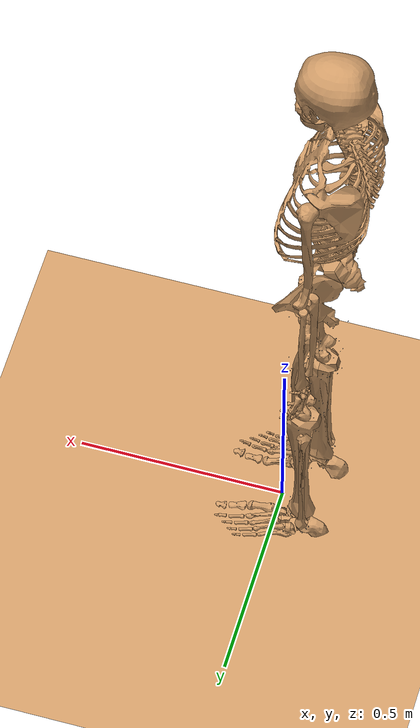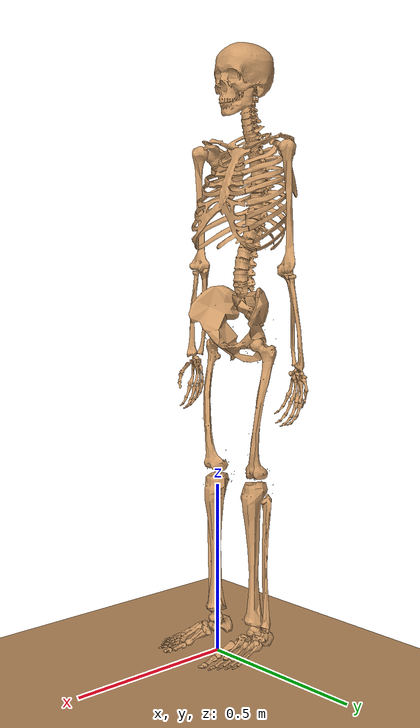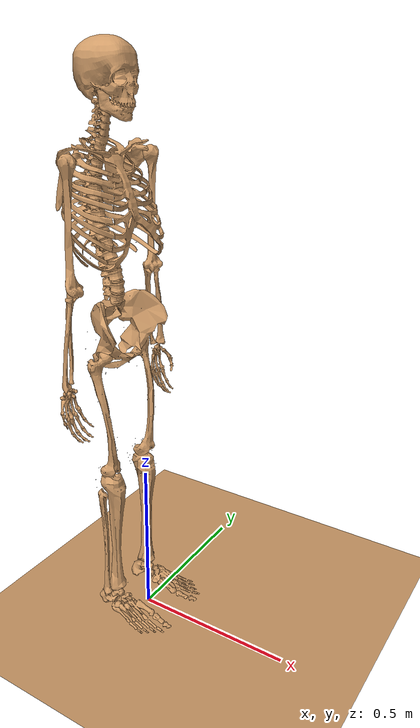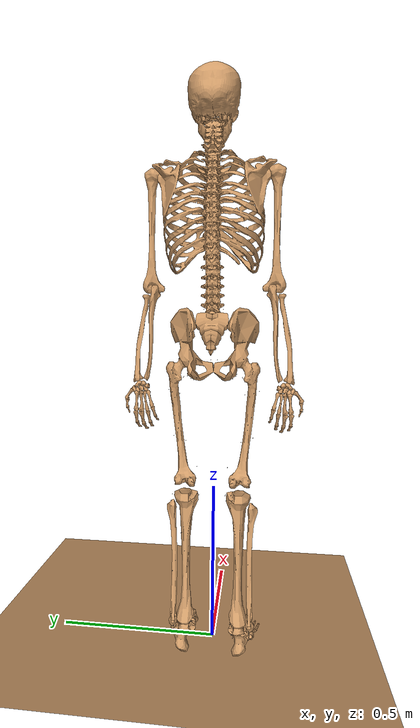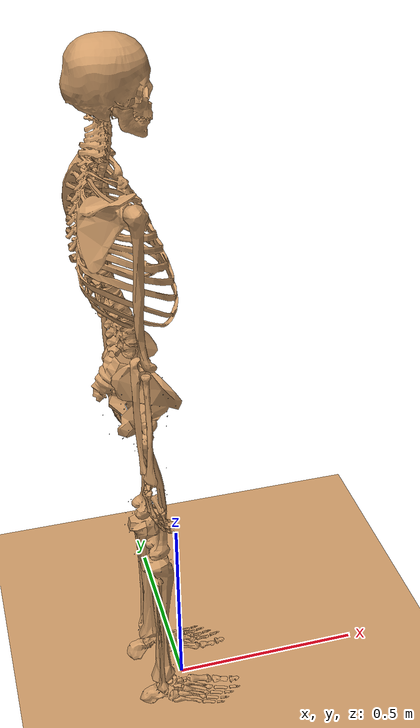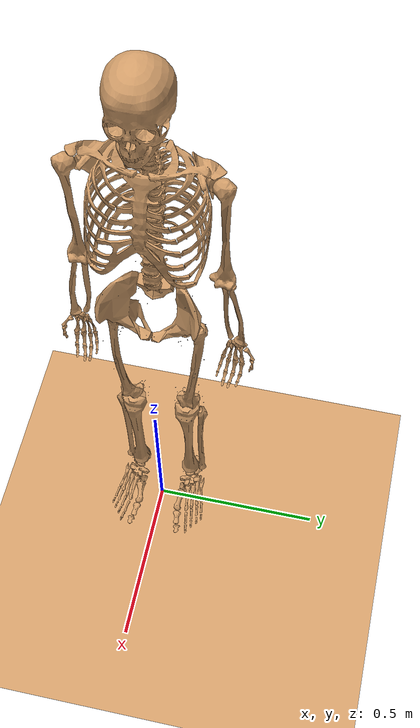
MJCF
<?xml version="1.1" encoding="utf-8"?>
<!--Created by Guoping Zhao, Lauflabor, TU Darmstadt.-->
<!--Based on Hamner2010 OpenSim model.-->
<!--Simplify knee joint to a single DoF revolution joint.-->
<!--v1.1 simplify the path for the knee extensors: rect_fem, vas_med, vas_int, and vas_lat. -->
<!--This model parameters (e.g. contact detection, muscle path, etc.) haven't been optimized.-->
<mujoco model="skeleton">

  <compiler inertiafromgeom="auto" angle="radian" balanceinertia="true" boundmass="0.001" boundinertia="0.001">
    <lengthrange inttotal="50" useexisting="true"></lengthrange>
  </compiler>
  <default>
    <joint limited="true" damping="1.0" armature="0.01" stiffness="1.0"></joint>
    <geom rgba="0.8 0.6 .4 1" margin="0.001" group="0"></geom>
    <site size="0.001"></site>
    <tendon width="0.005" rgba=".95 .3 .3 1" limited="false"></tendon>
    <muscle scale="200" ctrlrange="0 1" ctrllimited="true" range="0.65 1.05"></muscle>
    <motor ctrlrange="-1.0 1.0" ctrllimited="true"></motor>
  </default>
  <size njmax="1000" nconmax="400" nuser_jnt="1"></size>
  <worldbody>
    <body name="pelvis" pos="       0 6.73556e-17      0.975" quat="0.7071067811865475 0.7071067811865475 0.0 0.0">
      <light name="spotlight" mode="trackcom" pos="0 50 2" dir="0 -1 0" />
      <camera name="track" mode="trackcom" pos="0 0 4" xyaxes="1 0 0 0 1 0" />
      <freejoint name="root" />
      <geom name="sacrum" type="mesh" mesh="sacrum"></geom>
      <geom name="pelvis" type="mesh" mesh="pelvis"></geom>
      <geom name="l_pelvis" type="mesh" mesh="l_pelvis"></geom>
      <inertial pos="-0.0721882        0        0" mass="13.5729922649758" fullinertia="0.123517 0.104653 0.0695686        0        0        0"></inertial>
      <site name="glut_med1_r-P1" pos="-0.0416588 0.0310399 0.123445"></site>
      <site name="glut_med2_r-P1" pos="-0.0872997 0.0454367 0.0782124"></site>
      <site name="glut_med3_r-P1" pos="-0.124874 0.010721 0.066164"></site>
      <site name="glut_min1_r-P1" pos="-0.047683 -0.0081684 0.107823"></site>
      <site name="glut_min2_r-P1" pos="-0.0646324 -0.00663682 0.101186"></site>
      <site name="glut_min3_r-P1" pos="-0.0851555 -0.00643261 0.0874018"></site>
      <site name="semimem_r-P1" pos="-0.121709 -0.0995217 0.0730153"></site>
      <site name="semiten_r-P1" pos="-0.12901 -0.112193 0.0616612"></site>
      <site name="bifemlh_r-P1" pos="-0.128611 -0.104729 0.0709017"></site>
      <site name="sar_r-P1" pos="-0.0156221 -0.00132736 0.126814"></site>
      <site name="add_long_r-P1" pos="-0.0322652 -0.0853597 0.0172557"></site>
      <site name="add_brev_r-P1" pos="-0.0599356 -0.093426 0.0167452"></site>
      <site name="add_mag1_r-P1" pos="-0.0747408 -0.119871 0.0260368"></site>
      <site name="add_mag2_r-P1" pos="-0.0848492 -0.121709 0.0314483"></site>
      <site name="add_mag3_r-P1" pos="-0.113418 -0.116532 0.0498476"></site>
      <site name="tfl_r-P1" pos="-0.0317546 0.0218505 0.126712"></site>
      <site name="pect_r-P1" pos="-0.0440072 -0.0784166 0.0460493"></site>
      <site name="grac_r-P1" pos="-0.0755679 -0.121199 0.0285281"></site>
      <site name="glut_max1_r-P1" pos="-0.122015 0.0624882 0.0714735"></site>
      <site name="glut_max1_r-P2" pos="-0.131818 0.00122526 0.090465"></site>
      <site name="glut_max2_r-P1" pos="-0.13774 0.0179705 0.0574851"></site>
      <site name="glut_max2_r-P2" pos="-0.140496 -0.0530946 0.0933239"></site>
      <site name="glut_max3_r-P1" pos="-0.158875 -0.032061 0.00592209"></site>
      <site name="glut_max3_r-P2" pos="-0.156118 -0.107414 0.0411483"></site>
      <site name="iliacus_r-P1" pos="-0.0688187 0.0372683 0.0871976"></site>
      <site name="iliacus_r-P2" pos="-0.0263431 -0.0561577 0.0828071"></site>
      <site name="iliacus_r-P3" pos="-0.0294062 -0.0821945 0.0833176"></site>
      <site name="psoas_r-P1" pos="-0.0660619 0.0905671 0.0295083"></site>
      <site name="psoas_r-P2" pos="-0.024301 -0.0581998 0.0774977"></site>
      <site name="psoas_r-P3" pos="-0.0294062 -0.0821945 0.0833176"></site>
      <site name="quad_fem_r-P1" pos="-0.116706 -0.117523 0.0530946"></site>
      <site name="gem_r-P1" pos="-0.115685 -0.0837261 0.0729029"></site>
      <site name="peri_r-P1" pos="-0.142539 0.000306315 0.0239947"></site>
      <site name="peri_r-P2" pos="-0.121811 -0.028181 0.067083"></site>
      <site name="rect_fem_r-P1" pos="-0.030121 -0.0317546 0.0988376"></site>
      <site name="glut_med1_l-P1" pos="-0.0416588 0.0310399 -0.123445"></site>
      <site name="glut_med2_l-P1" pos="-0.0872997 0.0454367 -0.0782124"></site>
      <site name="glut_med3_l-P1" pos="-0.124874 0.010721 -0.066164"></site>
      <site name="glut_min1_l-P1" pos="-0.047683 -0.0081684 -0.107823"></site>
      <site name="glut_min2_l-P1" pos="-0.0646324 -0.00663682 -0.101186"></site>
      <site name="glut_min3_l-P1" pos="-0.0851555 -0.00643261 -0.0874018"></site>
      <site name="semimem_l-P1" pos="-0.121709 -0.0995217 -0.0730153"></site>
      <site name="semiten_l-P1" pos="-0.12901 -0.112193 -0.0616612"></site>
      <site name="bifemlh_l-P1" pos="-0.128611 -0.104729 -0.0709017"></site>
      <site name="sar_l-P1" pos="-0.0156221 -0.00132736 -0.126814"></site>
      <site name="add_long_l-P1" pos="-0.0322652 -0.0853597 -0.0172557"></site>
      <site name="add_brev_l-P1" pos="-0.0599356 -0.093426 -0.0167452"></site>
      <site name="add_mag1_l-P1" pos="-0.0747408 -0.119871 -0.0260368"></site>
      <site name="add_mag2_l-P1" pos="-0.0848492 -0.121709 -0.0314483"></site>
      <site name="add_mag3_l-P1" pos="-0.113418 -0.116532 -0.0498476"></site>
      <site name="tfl_l-P1" pos="-0.0317546 0.0218505 -0.126712"></site>
      <site name="pect_l-P1" pos="-0.0440072 -0.0784166 -0.0460493"></site>
      <site name="grac_l-P1" pos="-0.0755679 -0.121199 -0.0285281"></site>
      <site name="glut_max1_l-P1" pos="-0.122015 0.0624882 -0.0714735"></site>
      <site name="glut_max1_l-P2" pos="-0.131818 0.00122526 -0.090465"></site>
      <site name="glut_max2_l-P1" pos="-0.13774 0.0179705 -0.0574851"></site>
      <site name="glut_max2_l-P2" pos="-0.140496 -0.0530946 -0.0933239"></site>
      <site name="glut_max3_l-P1" pos="-0.158875 -0.032061 -0.00592209"></site>
      <site name="glut_max3_l-P2" pos="-0.156118 -0.107414 -0.0411483"></site>
      <site name="iliacus_l-P1" pos="-0.0688187 0.0372683 -0.0871976"></site>
      <site name="iliacus_l-P2" pos="-0.0263431 -0.0561577 -0.0828071"></site>
      <site name="iliacus_l-P3" pos="-0.0294062 -0.0821945 -0.0833176"></site>
      <site name="psoas_l-P1" pos="-0.0660619 0.0905671 -0.0295083"></site>
      <site name="psoas_l-P2" pos="-0.024301 -0.0581998 -0.0774977"></site>
      <site name="psoas_l-P3" pos="-0.0294062 -0.0821945 -0.0833176"></site>
      <site name="quad_fem_l-P1" pos="-0.116706 -0.117523 -0.0530946"></site>
      <site name="gem_l-P1" pos="-0.115685 -0.0837261 -0.0729029"></site>
      <site name="peri_l-P1" pos="-0.142539 0.000306315 -0.0239947"></site>
      <site name="peri_l-P2" pos="-0.121811 -0.028181 -0.067083"></site>
      <site name="rect_fem_l-P1" pos="-0.030121 -0.0317546 -0.0988376"></site>
      <site name="ercspn_r-P1" pos="-0.142947 0.0448241 0.0445178"></site>
      <site name="ercspn_l-P1" pos="-0.142947 0.0448241 -0.0445178"></site>
      <site name="intobl_r-P1" pos="-0.040842 0.0714735 0.118135"></site>
      <site name="intobl_l-P1" pos="-0.040842 0.0714735 -0.118135"></site>
      <site name="extobl_r-P1" pos="-0.0306315 -0.0649388 0.0102105"></site>
      <site name="extobl_l-P1" pos="-0.0306315 -0.0649388 -0.0102105"></site>
      <body name="femur_r" pos="-0.0721882 -0.0674914 0.0852576" quat="1.0 0.0 0.0 0.0">
        <geom name="femur_r" type="mesh" mesh="femur_r"></geom>
        <inertial pos="       0 -0.154514        0" mass="10.7198633143794" fullinertia="0.127486 0.0334185 0.134436        0        0        0"></inertial>
        <site name="glut_med1_r-P2" pos="-0.0198142 -0.0106342 0.0504444"></site>
        <site name="glut_med2_r-P2" pos="-0.0234498 -0.00527166 0.0478994"></site>
        <site name="glut_med3_r-P2" pos="-0.0280852 -0.00427187 0.0470814"></site>
        <site name="glut_min1_r-P2" pos="-0.00654413 -0.00945264 0.0508988"></site>
        <site name="glut_min2_r-P2" pos="-0.00872551 -0.00945264 0.0508988"></site>
        <site name="glut_min3_r-P2" pos="-0.0122703 -0.00754393 0.0499899"></site>
        <site name="bifemsh_r-P1" pos="0.00454454 -0.19187 0.0212684"></site>
        <site name="sar_r-P2" pos="-0.00272672 -0.324298 -0.038265"></site>
        <site name="add_long_r-P2" pos="0.00454454 -0.19187 0.0212684"></site>
        <site name="add_brev_r-P2" pos="0.000818017 -0.108705 0.0267219"></site>
        <site name="add_mag1_r-P2" pos="-0.00409008 -0.110069 0.030812"></site>
        <site name="add_mag2_r-P2" pos="0.0049081 -0.207685 0.0206322"></site>
        <site name="add_mag3_r-P2" pos="0.00636235 -0.348748 -0.0241769"></site>
        <site name="tfl_r-P2" pos="0.0267219 -0.0904363 0.0542618"></site>
        <site name="tfl_r-P3" pos="0.0049081 -0.368017 0.032448"></site>
        <site name="pect_r-P2" pos="-0.0110887 -0.0747122 0.0229954"></site>
        <site name="glut_max1_r-P3" pos="-0.0415371 -0.0225409 0.0356292"></site>
        <site name="glut_max1_r-P4" pos="-0.0251767 -0.0514442 0.0427187"></site>
        <site name="glut_max2_r-P3" pos="-0.0387195 -0.0481721 0.026631"></site>
        <site name="glut_max2_r-P4" pos="-0.014179 -0.092345 0.0380832"></site>
        <site name="glut_max3_r-P3" pos="-0.0271763 -0.0946173 0.0122703"></site>
        <site name="glut_max3_r-P4" pos="-0.00545344 -0.128974 0.0373561"></site>
        <site name="iliacus_r-P4" pos="0.00154514 -0.0493537 0.00518077"></site>
        <site name="iliacus_r-P5" pos="-0.0175419 -0.0564432 0.0117249"></site>
        <site name="psoas_r-P4" pos="0.00145425 -0.0460816 0.00345385"></site>
        <site name="psoas_r-P5" pos="-0.0170875 -0.0542618 0.00945264"></site>
        <site name="quad_fem_r-P2" pos="-0.0346294 -0.0326298 0.033266"></site>
        <site name="gem_r-P2" pos="-0.0129065 -0.00299939 0.0402646"></site>
        <site name="peri_r-P3" pos="-0.0134518 -0.00327207 0.0397193"></site>
        <site name="rect_fem_r-P2" pos="0.0303575 -0.36629 0.00172692"></site>
        <site name="vas_med_r-P1" pos="0.0127247 -0.19078 0.0170875"></site>
        <site name="vas_med_r-P2" pos="0.0323571 -0.251676 0.000818017"></site>
        <site name="vas_med_r-P3" pos="0.0336296 -0.367926 -0.0113613"></site>
        <site name="vas_med_r-P4" pos="0.0249041 -0.38674 -0.0119067"></site>
        <site name="vas_int_r-P1" pos="0.0263583 -0.174874 0.0281761"></site>
        <site name="vas_int_r-P2" pos="0.0304484 -0.189416 0.0259039"></site>
        <site name="vas_int_r-P3" pos="0.0311755 -0.36629 0.00499899"></site>
        <site name="vas_lat_r-P1" pos="0.00436276 -0.168511 0.0317209"></site>
        <site name="vas_lat_r-P2" pos="0.0244496 -0.235498 0.0371743"></site>
        <site name="vas_lat_r-P3" pos="0.0328116 -0.36629 0.0186326"></site>
        <site name="vas_lat_r-P4" pos="0.0229954 -0.385649 0.0167239"></site>
        <site name="med_gas_r-P1" pos="-0.0172692 -0.35711 -0.0213593"></site>
        <site name="med_gas_r-P2" pos="-0.0272672 -0.365563 -0.0234498"></site>
        <site name="lat_gas_r-P1" pos="-0.019996 -0.358655 0.0247223"></site>
        <site name="lat_gas_r-P2" pos="-0.0272672 -0.365199 0.0249041"></site>
        <joint name="hip_flexion_r" damping="5" stiffness="10" type="hinge" pos="0 0 0" axis="       0        0        1" limited="true" range=" -0.787   0.787" ref="0"></joint>
        <joint name="hip_adduction_r" damping="5" stiffness="10" type="hinge" pos="0 0 0" axis="       1        0        0" limited="true" range=" -0.524   0.524" ref="0"></joint>
        <joint name="hip_rotation_r" damping="5" stiffness="20" type="hinge" pos="0 0 0" axis="       0        1        0" limited="true" range=" -2.0944   2.0944" ref="0"></joint>
        <body name="tibia_r" pos="-0.00167398 -0.365545        0" quat="1.0 0.0 0.0 0.0">
          <geom name="tibia_r" type="mesh" mesh="tibia_r"></geom>
          <geom name="fibula_r" type="mesh" mesh="fibula_r"></geom>
          <inertial pos="       0 -0.208485        0" mass="4.27289367601238" fullinertia="0.072432 0.00732943 0.073438        0        0        0"></inertial>
          <site name="semimem_r-P3" pos="-0.0301504 -0.0532769 -0.0218535"></site>
          <site name="semimem_r-P2" pos="-0.0388605 -0.039296 -0.0211165"></site>
          <site name="semiten_r-P3" pos="-0.0370962 -0.0589832 -0.0255497"></site>
          <site name="semiten_r-P4" pos="-0.0126185 -0.0833045 -0.0273587"></site>
          <site name="semiten_r-P5" pos="0.00301504 -0.106755 -0.021552"></site>
          <site name="semiten_r-P2" pos="-0.0469342 -0.0319259 -0.0254269"></site>
          <site name="bifemlh_r-P2" pos="-0.0336121 -0.0402006 0.032864"></site>
          <site name="bifemlh_r-P3" pos="-0.0261304 -0.0628692 0.0383022"></site>
          <site name="bifemsh_r-P2" pos="-0.0336121 -0.0402006 0.032864"></site>
          <site name="bifemsh_r-P3" pos="-0.0261304 -0.0628692 0.0383022"></site>
          <site name="sar_r-P3" pos="-0.00625342 -0.046789 -0.0445556"></site>
          <site name="sar_r-P4" pos="0.00670009 -0.0657726 -0.0427689"></site>
          <site name="sar_r-P5" pos="0.0271354 -0.0938013 -0.0281404"></site>
          <site name="tfl_r-P4" pos="0.00670009 -0.0543824 0.0331655"></site>
          <site name="grac_r-P3" pos="-0.0216971 -0.0575426 -0.0399772"></site>
          <site name="grac_r-P4" pos="0.00670009 -0.0933546 -0.0254604"></site>
          <site name="grac_r-P2" pos="-0.0296702 -0.0356222 -0.0421436"></site>
          <site name="rect_fem_r-P3" pos="0.04071991 -0.06776167  0.0014"></site>
          <site name="vas_med_r-P5" pos="0.04286936 -0.06354775 -0.0146"></site>
          <site name="vas_int_r-P4" pos="0.04100479 -0.06810118  0.0014"></site>
          <site name="vas_lat_r-P5" pos="0.04001863 -0.06593119  0.0165"></site>
          <site name="soleus_r-P1" pos="-0.00268004 -0.171187 0.00792844"></site>
          <site name="tib_post_r-P1" pos="-0.0104968 -0.150529 0.0021217"></site>
          <site name="tib_post_r-P2" pos="-0.0160802 -0.452368 -0.025572"></site>
          <site name="flex_dig_r-P1" pos="-0.00926846 -0.228473 -0.00201003"></site>
          <site name="flex_dig_r-P2" pos="-0.0171969 -0.452368 -0.021887"></site>
          <site name="flex_hal_r-P1" pos="-0.00882179 -0.260634 0.027247"></site>
          <site name="flex_hal_r-P2" pos="-0.0207703 -0.455495 -0.0194303"></site>
          <site name="tib_ant_r-P1" pos="0.0199886 -0.181349 0.0128418"></site>
          <site name="tib_ant_r-P2" pos="0.0367388 -0.441201 -0.0197653"></site>
          <site name="per_brev_r-P1" pos="-0.00781678 -0.295474 0.0362922"></site>
          <site name="per_brev_r-P2" pos="-0.0221103 -0.46722 0.0316021"></site>
          <site name="per_brev_r-P3" pos="-0.0160802 -0.479615 0.0322721"></site>
          <site name="per_long_r-P1" pos="0.000558341 -0.175096 0.0404239"></site>
          <site name="per_long_r-P2" pos="-0.0231153 -0.469565 0.0319371"></site>
          <site name="per_long_r-P3" pos="-0.0180903 -0.482295 0.0322721"></site>
          <site name="per_tert_r-P1" pos="0.00111668 -0.313118 0.0257954"></site>
          <site name="per_tert_r-P2" pos="0.025572 -0.454378 0.0177552"></site>
          <site name="ext_dig_r-P1" pos="0.00357338 -0.154214 0.0308204"></site>
          <site name="ext_dig_r-P2" pos="0.0322721 -0.447455 0.00804011"></site>
          <site name="ext_hal_r-P1" pos="0.00134002 -0.197318 0.0254604"></site>
          <site name="ext_hal_r-P2" pos="0.0364038 -0.444998 -0.0094918"></site>
          <joint name="knee_angle_r" type="hinge" pos="0 0 0" axis="       0        0        1" limited="true" range=" -2.0944 0.174533" ref="0"></joint>
          <body name="talus_r" pos="       0 -0.480173        0" quat="1.0 0.0 0.0 0.0">
            <geom name="talus_rv" type="mesh" mesh="talus_rv"></geom>
            <inertial pos="       0        0        0" mass="0.11524999800438" fullinertia="0.00143714 0.00143714 0.00143714        0        0        0"></inertial>
            <joint name="ankle_angle_r" stiffness="10" damping="1" type="hinge" pos="0 0 0" axis="-0.105014 -0.174022 0.979126" limited="true" range=" -1.5708   1.5708" ref="0"></joint>
            <body name="calcn_r" pos="-0.0544606 -0.0468448 0.00884412" quat="1.0 0.0 0.0 0.0">
              <geom name="r_foot" type="mesh" mesh="foot" condim="3"></geom>
              <inertial pos="0.106552 0.0319656        0" mass="1.44062497505475" fullinertia="0.00183186 0.00510303 0.00536472        0        0        0"></inertial>
              <site name="med_gas_r-P3" pos="0 0.0330311 -0.00564725"></site>
              <site name="lat_gas_r-P3" pos="0 0.0330311 -0.00564725"></site>
              <site name="soleus_r-P2" pos="0 0.0330311 -0.00564725"></site>
              <site name="tib_post_r-P3" pos="0.0444321 0.0355883 -0.0304738"></site>
              <site name="tib_post_r-P4" pos="0.0822581 0.0169418 -0.0299411"></site>
              <site name="flex_dig_r-P3" pos="0.0464566 0.0335638 -0.0298345"></site>
              <site name="flex_dig_r-P4" pos="0.0754387 0.0187531 -0.0280231"></site>
              <site name="flex_dig_r-P5" pos="0.176663 -0.0086307 0.01236"></site>
              <site name="flex_hal_r-P3" pos="0.0398504 0.0294083 -0.025679"></site>
              <site name="flex_hal_r-P4" pos="0.110601 0.00724553 -0.0272773"></site>
              <site name="flex_hal_r-P5" pos="0.183909 -0.00564725 -0.0286625"></site>
              <site name="tib_ant_r-P3" pos="0.12424 0.0189662 -0.0324983"></site>
              <site name="per_brev_r-P4" pos="0.0501859 0.028769 0.0248266"></site>
              <site name="per_brev_r-P5" pos="0.0721356 0.0233349 0.0365473"></site>
              <site name="per_long_r-P4" pos="0.0466697 0.0245069 0.023548"></site>
              <site name="per_long_r-P5" pos="0.0725618 0.0112945 0.0302607"></site>
              <site name="per_long_r-P6" pos="0.0907822 0.00735208 0.0125731"></site>
              <site name="per_long_r-P7" pos="0.128182 0.00905691 -0.0196055"></site>
              <site name="per_tert_r-P3" pos="0.091315 0.0242938 0.031859"></site>
              <site name="ext_dig_r-P3" pos="0.0982408 0.0413421 -0.000106552"></site>
              <site name="ext_dig_r-P4" pos="0.172188 0.00586035 0.0138517"></site>
              <site name="ext_hal_r-P3" pos="0.103355 0.0414487 -0.0224824"></site>
              <site name="ext_hal_r-P4" pos="0.137772 0.0329245 -0.0273838"></site>
              <site name="ext_hal_r-P5" pos="0.184761 0.0148107 -0.0298345"></site>
              <joint name="subtalar_angle_r" type="hinge" pos="0 0 0" axis=" 0.78718 0.604747 -0.120949" limited="true" range=" -1.5708   1.5708" ref="0"></joint>
              <body name="toes_r" pos="0.190515 -0.00213104 0.00115076" quat="1.0 0.0 0.0 0.0">
                <geom name="r_bofoot" type="mesh" mesh="bofoot"></geom>
                <inertial pos="0.036867 0.00639311 -0.0186466" mass="0.249631495677486" fullinertia="0.000130847 0.000261694 0.00130847        0        0        0"></inertial>
                <site name="flex_dig_r-P6" pos="-0.00202449 -0.00831105 0.0156631"></site>
                <site name="flex_dig_r-P7" pos="0.0303673 -0.00756518 0.0229087"></site>
                <site name="flex_dig_r-P8" pos="0.0469894 -0.00639311 0.0257856"></site>
                <site name="flex_hal_r-P6" pos="0.0165155 -0.00681932 -0.0282363"></site>
                <site name="flex_hal_r-P7" pos="0.0598822 -0.0108683 -0.0192859"></site>
                <site name="ext_dig_r-P5" pos="0.000319656 0.00500794 0.0163024"></site>
                <site name="ext_dig_r-P6" pos="0.0472025 -0.000426208 0.026638"></site>
                <site name="ext_hal_r-P6" pos="0.0317525 0.00436863 -0.0261052"></site>
                <site name="ext_hal_r-P7" pos="0.0599887 0.00362276 -0.0198187"></site>
                <joint name="mtp_angle_r" type="hinge" pos="0 0 0" axis="-0.580954        0 0.813936" limited="true" range=" -1.5708   1.5708" ref="0"></joint>
              </body>
            </body>
          </body>
        </body>
      </body>
      <body name="femur_l" pos="-0.0721882 -0.0674914 -0.0852576" quat="1.0 0.0 0.0 0.0">
        <geom name="femur_l" type="mesh" mesh="femur_l"></geom>
        <inertial pos="       0 -0.154514        0" mass="10.7198633143794" fullinertia="0.127486 0.0334185 0.134436        0        0        0"></inertial>
        <site name="glut_med1_l-P2" pos="-0.0198142 -0.0106342 -0.0504444"></site>
        <site name="glut_med2_l-P2" pos="-0.0234498 -0.00527166 -0.0478994"></site>
        <site name="glut_med3_l-P2" pos="-0.0280852 -0.00427187 -0.0470814"></site>
        <site name="glut_min1_l-P2" pos="-0.00654413 -0.00945264 -0.0508988"></site>
        <site name="glut_min2_l-P2" pos="-0.00872551 -0.00945264 -0.0508988"></site>
        <site name="glut_min3_l-P2" pos="-0.0122703 -0.00754393 -0.0499899"></site>
        <site name="bifemsh_l-P1" pos="0.00454454 -0.19187 -0.0212684"></site>
        <site name="sar_l-P2" pos="-0.00272672 -0.324298 0.038265"></site>
        <site name="add_long_l-P2" pos="0.00454454 -0.19187 -0.0212684"></site>
        <site name="add_brev_l-P2" pos="0.000818017 -0.108705 -0.0267219"></site>
        <site name="add_mag1_l-P2" pos="-0.00409008 -0.110069 -0.030812"></site>
        <site name="add_mag2_l-P2" pos="0.0049081 -0.207685 -0.0206322"></site>
        <site name="add_mag3_l-P2" pos="0.00636235 -0.348748 0.0241769"></site>
        <site name="tfl_l-P2" pos="0.0267219 -0.0904363 -0.0542618"></site>
        <site name="tfl_l-P3" pos="0.0049081 -0.368017 -0.032448"></site>
        <site name="pect_l-P2" pos="-0.0110887 -0.0747122 -0.0229954"></site>
        <site name="glut_max1_l-P3" pos="-0.0415371 -0.0225409 -0.0356292"></site>
        <site name="glut_max1_l-P4" pos="-0.0251767 -0.0514442 -0.0427187"></site>
        <site name="glut_max2_l-P3" pos="-0.0387195 -0.0481721 -0.026631"></site>
        <site name="glut_max2_l-P4" pos="-0.014179 -0.092345 -0.0380832"></site>
        <site name="glut_max3_l-P3" pos="-0.0271763 -0.0946173 -0.0122703"></site>
        <site name="glut_max3_l-P4" pos="-0.00545344 -0.128974 -0.0373561"></site>
        <site name="iliacus_l-P4" pos="0.00154514 -0.0493537 -0.00518077"></site>
        <site name="iliacus_l-P5" pos="-0.0175419 -0.0564432 -0.0117249"></site>
        <site name="psoas_l-P4" pos="0.00145425 -0.0460816 -0.00345385"></site>
        <site name="psoas_l-P5" pos="-0.0170875 -0.0542618 -0.00945264"></site>
        <site name="quad_fem_l-P2" pos="-0.0346294 -0.0326298 -0.033266"></site>
        <site name="gem_l-P2" pos="-0.0129065 -0.00299939 -0.0402646"></site>
        <site name="peri_l-P3" pos="-0.0134518 -0.00327207 -0.0397193"></site>
        <site name="rect_fem_l-P2" pos="0.0303575 -0.36629 -0.00172692"></site>
        <site name="vas_med_l-P1" pos="0.0127247 -0.19078 -0.0170875"></site>
        <site name="vas_med_l-P2" pos="0.0323571 -0.251676 -0.000818017"></site>
        <site name="vas_med_l-P3" pos="0.0336296 -0.367926 0.0113613"></site>
        <site name="vas_med_l-P4" pos="0.0249041 -0.38674 0.0119067"></site>
        <site name="vas_int_l-P1" pos="0.0263583 -0.174874 -0.0281761"></site>
        <site name="vas_int_l-P2" pos="0.0304484 -0.189416 -0.0259039"></site>
        <site name="vas_int_l-P3" pos="0.0311755 -0.36629 -0.00499899"></site>
        <site name="vas_lat_l-P1" pos="0.00436276 -0.168511 -0.0317209"></site>
        <site name="vas_lat_l-P2" pos="0.0244496 -0.235498 -0.0371743"></site>
        <site name="vas_lat_l-P3" pos="0.0328116 -0.36629 -0.0186326"></site>
        <site name="vas_lat_l-P4" pos="0.0229954 -0.385649 -0.0167239"></site>

        <site name="med_gas_l-P1" pos="-0.0172692 -0.35711 0.0213593"></site>
        <site name="med_gas_l-P2" pos="-0.0272672 -0.365563 0.0234498"></site>
        <site name="lat_gas_l-P1" pos="-0.019996 -0.358655 -0.0247223"></site>
        <site name="lat_gas_l-P2" pos="-0.0272672 -0.365199 -0.0249041"></site>
        <joint name="hip_flexion_l" damping="5" stiffness="10" type="hinge" pos="0 0 0" axis="       0        0        1" limited="true" range=" -0.787   0.787" ref="0"></joint>
        <joint name="hip_adduction_l" damping="5" stiffness="10" type="hinge" pos="0 0 0" axis="      -1        0        0" limited="true" range=" -0.524   0.524" ref="0"></joint>
        <joint name="hip_rotation_l" damping="5" stiffness="20" type="hinge" pos="0 0 0" axis="       0       -1        0" limited="true" range=" -2.0944   2.0944" ref="0"></joint>
        <body name="tibia_l" pos="-0.00167398 -0.365545        0" quat="1.0 0.0 0.0 0.0">
          <geom name="tibia_l" type="mesh" mesh="tibia_l"></geom>
          <geom name="fibula_l" type="mesh" mesh="fibula_l"></geom>
          <inertial pos="       0 -0.208485        0" mass="4.27289367601238" fullinertia="0.072432 0.00732943 0.073438        0        0        0"></inertial>
          <site name="semimem_l-P3" pos="-0.0301504 -0.0532769 0.0218535"></site>
          <site name="semimem_l-P2" pos="-0.0388605 -0.039296 0.0211165"></site>
          <site name="semiten_l-P3" pos="-0.0370962 -0.0589832 0.0255497"></site>
          <site name="semiten_l-P4" pos="-0.0126185 -0.0833045 0.0273587"></site>
          <site name="semiten_l-P5" pos="0.00301504 -0.106755 0.021552"></site>
          <site name="semiten_l-P2" pos="-0.0469342 -0.0319259 0.0254269"></site>
          <site name="bifemlh_l-P2" pos="-0.0336121 -0.0402006 -0.032864"></site>
          <site name="bifemlh_l-P3" pos="-0.0261304 -0.0628692 -0.0383022"></site>
          <site name="bifemsh_l-P2" pos="-0.0336121 -0.0402006 -0.032864"></site>
          <site name="bifemsh_l-P3" pos="-0.0261304 -0.0628692 -0.0383022"></site>
          <site name="sar_l-P3" pos="-0.00625342 -0.046789 0.0445556"></site>
          <site name="sar_l-P4" pos="0.00670009 -0.0657726 0.0427689"></site>
          <site name="sar_l-P5" pos="0.0271354 -0.0938013 0.0281404"></site>
          <site name="tfl_l-P4" pos="0.00670009 -0.0543824 -0.0331655"></site>
          <site name="grac_l-P3" pos="-0.0216971 -0.0575426 0.0399772"></site>
          <site name="grac_l-P4" pos="0.00670009 -0.0933546 0.0254604"></site>
          <site name="grac_l-P2" pos="-0.0296702 -0.0356222 0.0421436"></site>
          <site name="rect_fem_l-P3" pos="0.04071991 -0.06776167 -0.0014"></site>
          <site name="vas_med_l-P5" pos="0.04286936 -0.06354775  0.0146"></site>
          <site name="vas_int_l-P4" pos="0.04071991 -0.06776167 -0.0014"></site>
          <site name="vas_lat_l-P5" pos="0.04001863 -0.06593119 -0.0165"></site>
          <site name="soleus_l-P1" pos="-0.00268004 -0.171187 -0.00792844"></site>
          <site name="tib_post_l-P1" pos="-0.0104968 -0.150529 -0.0021217"></site>
          <site name="tib_post_l-P2" pos="-0.0160802 -0.452368 0.025572"></site>
          <site name="flex_dig_l-P1" pos="-0.00926846 -0.228473 0.00201003"></site>
          <site name="flex_dig_l-P2" pos="-0.0171969 -0.452368 0.021887"></site>
          <site name="flex_hal_l-P1" pos="-0.00882179 -0.260634 -0.027247"></site>
          <site name="flex_hal_l-P2" pos="-0.0207703 -0.455495 0.0194303"></site>
          <site name="tib_ant_l-P1" pos="0.0199886 -0.181349 -0.0128418"></site>
          <site name="tib_ant_l-P2" pos="0.0367388 -0.441201 0.0197653"></site>
          <site name="per_brev_l-P1" pos="-0.00781678 -0.295474 -0.0362922"></site>
          <site name="per_brev_l-P2" pos="-0.0221103 -0.46722 -0.0316021"></site>
          <site name="per_brev_l-P3" pos="-0.0160802 -0.479615 -0.0322721"></site>
          <site name="per_long_l-P1" pos="0.000558341 -0.175096 -0.0404239"></site>
          <site name="per_long_l-P2" pos="-0.0231153 -0.469565 -0.0319371"></site>
          <site name="per_long_l-P3" pos="-0.0180903 -0.482295 -0.0322721"></site>
          <site name="per_tert_l-P1" pos="0.00111668 -0.313118 -0.0257954"></site>
          <site name="per_tert_l-P2" pos="0.025572 -0.454378 -0.0177552"></site>
          <site name="ext_dig_l-P1" pos="0.00357338 -0.154214 -0.0308204"></site>
          <site name="ext_dig_l-P2" pos="0.0322721 -0.447455 -0.00804011"></site>
          <site name="ext_hal_l-P1" pos="0.00134002 -0.197318 -0.0254604"></site>
          <site name="ext_hal_l-P2" pos="0.0364038 -0.444998 0.0094918"></site>
          <joint name="knee_angle_l" type="hinge" pos="0 0 0" axis="       0        0        1" limited="true" range=" -2.0944 0.174533" ref="0"></joint>
          <body name="talus_l" pos="       0 -0.480173        0" quat="1.0 0.0 0.0 0.0">
            <geom name="talus_lv" type="mesh" mesh="talus_lv"></geom>
            <inertial pos="       0        0        0" mass="0.11524999800438" fullinertia="0.00143714 0.00143714 0.00143714        0        0        0"></inertial>
            <joint name="ankle_angle_l" stiffness="10" damping="1" type="hinge" pos="0 0 0" axis="0.105014 0.174022 0.979126" limited="true" range=" -1.0472   1.0472" ref="0"></joint>
            <body name="calcn_l" pos="-0.0544606 -0.0468448 -0.00884412" quat="1.0 0.0 0.0 0.0">
              <geom name="l_foot" type="mesh" mesh="l_foot" condim="3"></geom>
              <inertial pos="0.106552 0.0319656        0" mass="1.44062497505475" fullinertia="0.00183186 0.00510303 0.00536472        0        0        0"></inertial>
              <site name="med_gas_l-P3" pos="0 0.0330311 0.00564725"></site>
              <site name="lat_gas_l-P3" pos="0 0.0330311 0.00564725"></site>
              <site name="soleus_l-P2" pos="0 0.0330311 0.00564725"></site>
              <site name="tib_post_l-P3" pos="0.0444321 0.0355883 0.0304738"></site>
              <site name="tib_post_l-P4" pos="0.0822581 0.0169418 0.0299411"></site>
              <site name="flex_dig_l-P3" pos="0.0464566 0.0335638 0.0298345"></site>
              <site name="flex_dig_l-P4" pos="0.0754387 0.0187531 0.0280231"></site>
              <site name="flex_dig_l-P5" pos="0.176663 -0.0086307 -0.01236"></site>
              <site name="flex_hal_l-P3" pos="0.0398504 0.0294083 0.025679"></site>
              <site name="flex_hal_l-P4" pos="0.110601 0.00724553 0.0272773"></site>
              <site name="flex_hal_l-P5" pos="0.183909 -0.00564725 0.0286625"></site>
              <site name="tib_ant_l-P3" pos="0.12424 0.0189662 0.0324983"></site>
              <site name="per_brev_l-P4" pos="0.0501859 0.028769 -0.0248266"></site>
              <site name="per_brev_l-P5" pos="0.0721356 0.0233349 -0.0365473"></site>
              <site name="per_long_l-P4" pos="0.0466697 0.0245069 -0.023548"></site>
              <site name="per_long_l-P5" pos="0.0725618 0.0112945 -0.0302607"></site>
              <site name="per_long_l-P6" pos="0.0907822 0.00735208 -0.0125731"></site>
              <site name="per_long_l-P7" pos="0.128182 0.00905691 0.0196055"></site>
              <site name="per_tert_l-P3" pos="0.091315 0.0242938 -0.031859"></site>
              <site name="ext_dig_l-P3" pos="0.0982408 0.0413421 0.000106552"></site>
              <site name="ext_dig_l-P4" pos="0.172188 0.00586035 -0.0138517"></site>
              <site name="ext_hal_l-P3" pos="0.103355 0.0414487 0.0224824"></site>
              <site name="ext_hal_l-P4" pos="0.137772 0.0329245 0.0273838"></site>
              <site name="ext_hal_l-P5" pos="0.184761 0.0148107 0.0298345"></site>
              <joint name="subtalar_angle_l" type="hinge" pos="0 0 0" axis="-0.78718 -0.604747 -0.120949" limited="true" range=" -1.5708   1.5708" ref="0"></joint>
              <body name="toes_l" pos="0.190515 -0.00213104 -0.00115076" quat="1.0 0.0 0.0 0.0">
                <geom name="l_bofoot" type="mesh" mesh="l_bofoot"></geom>
                <inertial pos="0.036867 0.00639311 0.0186466" mass="0.249631495677486" fullinertia="0.000130847 0.000261694 0.00130847        0        0        0"></inertial>
                <site name="flex_dig_l-P6" pos="-0.00202449 -0.00831105 -0.0156631"></site>
                <site name="flex_dig_l-P7" pos="0.0303673 -0.00756518 -0.0229087"></site>
                <site name="flex_dig_l-P8" pos="0.0469894 -0.00639311 -0.0257856"></site>
                <site name="flex_hal_l-P6" pos="0.0165155 -0.00681932 0.0282363"></site>
                <site name="flex_hal_l-P7" pos="0.0598822 -0.0108683 0.0192859"></site>
                <site name="ext_dig_l-P5" pos="0.000319656 0.00500794 -0.0163024"></site>
                <site name="ext_dig_l-P6" pos="0.0472025 -0.000426208 -0.026638"></site>
                <site name="ext_hal_l-P6" pos="0.0317525 0.00436863 0.0261052"></site>
                <site name="ext_hal_l-P7" pos="0.0599887 0.00362276 0.0198187"></site>
                <joint name="mtp_angle_l" type="hinge" pos="0 0 0" axis="0.580954        0 0.813936" limited="true" range=" -1.0472   1.0472" ref="0"></joint>
              </body>
            </body>
          </body>
        </body>
      </body>
      <body name="torso" pos="-0.10282 0.0832155        0" quat="1.0 0.0 0.0 0.0">
        <geom name="hat_spine" type="mesh" mesh="hat_spine"></geom>
        <geom name="hat_jaw" type="mesh" mesh="hat_jaw"></geom>
        <geom name="hat_skull" type="mesh" mesh="hat_skull"></geom>
        <geom name="hat_ribs_scap" type="mesh" mesh="hat_ribs_scap"></geom>
        <inertial pos="-0.0323208 0.344755        0" mass="30.9176559646429" fullinertia=" 1.97246  1.01064   1.9148        0        0        0"></inertial>
        <site name="ercspn_r-P2" pos="-0.0592548 0.11851 0.0259644"></site>
        <site name="ercspn_l-P2" pos="-0.0592548 0.11851 -0.0259644"></site>
        <site name="intobl_r-P2" pos="0.0754152 0.172378 0.0161604"></site>
        <site name="intobl_l-P2" pos="0.0754152 0.172378 -0.0161604"></site>
        <site name="extobl_r-P2" pos="0.0700284 0.11851 0.11851"></site>
        <site name="extobl_l-P2" pos="0.0700284 0.11851 -0.11851"></site>
        <joint name="lumbar_extension" stiffness="10" damping="5" type="hinge" pos="0 0 0" axis="       0        0        1" limited="true" range=" -1.5708   0.377" ref="0"></joint>
        <joint name="lumbar_bending" stiffness="10" damping="5" type="hinge" pos="0 0 0" axis="       1        0        0" limited="true" range=" -0.754   0.754" ref="0"></joint>
        <joint name="lumbar_rotation" stiffness="20" damping="5" type="hinge" pos="0 0 0" axis="       0        1        0" limited="true" range=" -0.754   0.754" ref="0"></joint>
        <body name="humerus_r" pos="0.00339907 0.400239 0.183151" quat="1.0 0.0 0.0 0.0">
          <geom name="humerus_rv" type="mesh" mesh="humerus_rv"></geom>
          <inertial pos="       0 -0.193252        0" mass="2.34245620943902" fullinertia="0.0190007 0.00655464 0.0213276        0        0        0"></inertial>
          <joint name="arm_flex_r" type="hinge" pos="0 0 0" axis="       0        0        1" limited="true" range=" -1.5708   1.5708" ref="0"></joint>
          <joint name="arm_add_r" type="hinge" pos="0 0 0" axis="       1        0        0" limited="true" range=" -2.0944   1.5708" ref="0"></joint>
          <joint name="arm_rot_r" type="hinge" pos="0 0 0" axis="       0        1        0" limited="true" range=" -1.5708   1.5708" ref="0"></joint>
          <body name="ulna_r" pos="0.0154412 -0.336305 -0.0112719" quat="1.0 0.0 0.0 0.0">
            <geom name="ulna_rv" type="mesh" mesh="ulna_rv"></geom>
            <inertial pos="       0 -0.133575        0" mass="0.700143737876607" fullinertia="0.00419295 0.000874829 0.00454826        0        0        0"></inertial>
            <joint name="elbow_flex_r" type="hinge" pos="0 0 0" axis="0.226047 0.022269 0.973862" limited="true" range="       0    2.618" ref="0"></joint>
            <body name="radius_r" pos="-0.00745535 -0.0144153 0.0289071" quat="1.0 0.0 0.0 0.0">
              <geom name="radius_rv" type="mesh" mesh="radius_rv"></geom>
              <inertial pos="       0 -0.133575        0" mass="0.700143737876607" fullinertia="0.00419295 0.000874829 0.00454826        0        0        0"></inertial>
              <joint name="pro_sup_r" type="hinge" pos="0 0 0" axis="0.056398 0.998406 0.001952" limited="true" range="       0   1.5708" ref="0"></joint>
              <body name="hand_r" pos="-0.00974948 -0.261376 0.0150836" quat="1.0 0.0 0.0 0.0">
                <geom name="pisiform_rvs" type="mesh" mesh="pisiform_rvs"></geom>
                <geom name="lunate_rvs" type="mesh" mesh="lunate_rvs"></geom>
                <geom name="scaphoid_rvs" type="mesh" mesh="scaphoid_rvs"></geom>
                <geom name="triquetrum_rvs" type="mesh" mesh="triquetrum_rvs"></geom>
                <geom name="hamate_rvs" type="mesh" mesh="hamate_rvs"></geom>
                <geom name="capitate_rvs" type="mesh" mesh="capitate_rvs"></geom>
                <geom name="trapezoid_rvs" type="mesh" mesh="trapezoid_rvs"></geom>
                <geom name="trapezium_rvs" type="mesh" mesh="trapezium_rvs"></geom>
                <geom name="metacarpal2_rvs" type="mesh" mesh="metacarpal2_rvs"></geom>
                <geom name="index_proximal_rvs" type="mesh" mesh="index_proximal_rvs"></geom>
                <geom name="index_medial_rvs" type="mesh" mesh="index_medial_rvs"></geom>
                <geom name="index_distal_rvs" type="mesh" mesh="index_distal_rvs"></geom>
                <geom name="metacarpal3_rvs" type="mesh" mesh="metacarpal3_rvs"></geom>
                <geom name="middle_proximal_rvs" type="mesh" mesh="middle_proximal_rvs"></geom>
                <geom name="middle_medial_rvs" type="mesh" mesh="middle_medial_rvs"></geom>
                <geom name="middle_distal_rvs" type="mesh" mesh="middle_distal_rvs"></geom>
                <geom name="metacarpal4_rvs" type="mesh" mesh="metacarpal4_rvs"></geom>
                <geom name="ring_proximal_rvs" type="mesh" mesh="ring_proximal_rvs"></geom>
                <geom name="ring_medial_rvs" type="mesh" mesh="ring_medial_rvs"></geom>
                <geom name="ring_distal_rvs" type="mesh" mesh="ring_distal_rvs"></geom>
                <geom name="metacarpal5_rvs" type="mesh" mesh="metacarpal5_rvs"></geom>
                <geom name="little_proximal_rvs" type="mesh" mesh="little_proximal_rvs"></geom>
                <geom name="little_medial_rvs" type="mesh" mesh="little_medial_rvs"></geom>
                <geom name="little_distal_rvs" type="mesh" mesh="little_distal_rvs"></geom>
                <geom name="metacarpal1_rvs" type="mesh" mesh="metacarpal1_rvs"></geom>
                <geom name="thumb_proximal_rvs" type="mesh" mesh="thumb_proximal_rvs"></geom>
                <geom name="thumb_distal_rvs" type="mesh" mesh="thumb_distal_rvs"></geom>
                <inertial pos="       0 -0.0725565        0" mass="0.527268740870037" fullinertia="0.00116715 0.000715732 0.00175335        0        0        0"></inertial>
                <joint name="wrist_flex_r" type="hinge" pos="0 0 0" axis="       0        0        1" limited="true" range="-1.22173  1.22173" ref="0"></joint>
                <joint name="wrist_dev_r" type="hinge" pos="0 0 0" axis="       1        0        0" limited="true" range="-0.436332 0.610865" ref="0"></joint>
              </body>
            </body>
          </body>
        </body>
        <body name="humerus_l" pos="0.00339907 0.400239 -0.183151" quat="1.0 0.0 0.0 0.0">
          <geom name="humerus_lv" type="mesh" mesh="humerus_lv"></geom>
          <inertial pos="       0 -0.193252        0" mass="2.34245620943902" fullinertia="0.0190007 0.00655464 0.0213276        0        0        0"></inertial>
          <joint name="arm_flex_l" type="hinge" pos="0 0 0" axis="       0        0        1" limited="true" range=" -1.5708   1.5708" ref="0"></joint>
          <joint name="arm_add_l" type="hinge" pos="0 0 0" axis="      -1        0        0" limited="true" range=" -2.0944   1.5708" ref="0"></joint>
          <joint name="arm_rot_l" type="hinge" pos="0 0 0" axis="       0       -1        0" limited="true" range=" -1.5708   1.5708" ref="0"></joint>
          <body name="ulna_l" pos="0.0154412 -0.336305 0.0112719" quat="1.0 0.0 0.0 0.0">
            <geom name="ulna_lv" type="mesh" mesh="ulna_lv"></geom>
            <inertial pos="       0 -0.133575        0" mass="0.700143737876607" fullinertia="0.00419295 0.000874829 0.00454826        0        0        0"></inertial>
            <joint name="elbow_flex_l" type="hinge" pos="0 0 0" axis="-0.226047 -0.022269 0.973862" limited="true" range="       0    2.618" ref="0"></joint>
            <body name="radius_l" pos="-0.00745535 -0.0144153 -0.0289071" quat="1.0 0.0 0.0 0.0">
              <geom name="radius_lv" type="mesh" mesh="radius_lv"></geom>
              <inertial pos="       0 -0.133575        0" mass="0.700143737876607" fullinertia="0.00419295 0.000874829 0.00454826        0        0        0"></inertial>
              <joint name="pro_sup_l" type="hinge" pos="0 0 0" axis="-0.056398 -0.998406 0.001952" limited="true" range="       0   1.5708" ref="0"></joint>
              <body name="hand_l" pos="-0.00974948 -0.261376 -0.0150836" quat="1.0 0.0 0.0 0.0">
                <geom name="pisiform_lvs" type="mesh" mesh="pisiform_lvs"></geom>
                <geom name="lunate_lvs" type="mesh" mesh="lunate_lvs"></geom>
                <geom name="scaphoid_lvs" type="mesh" mesh="scaphoid_lvs"></geom>
                <geom name="triquetrum_lvs" type="mesh" mesh="triquetrum_lvs"></geom>
                <geom name="hamate_lvs" type="mesh" mesh="hamate_lvs"></geom>
                <geom name="capitate_lvs" type="mesh" mesh="capitate_lvs"></geom>
                <geom name="trapezoid_lvs" type="mesh" mesh="trapezoid_lvs"></geom>
                <geom name="trapezium_lvs" type="mesh" mesh="trapezium_lvs"></geom>
                <geom name="metacarpal2_lvs" type="mesh" mesh="metacarpal2_lvs"></geom>
                <geom name="index_proximal_lvs" type="mesh" mesh="index_proximal_lvs"></geom>
                <geom name="index_medial_lvs" type="mesh" mesh="index_medial_lvs"></geom>
                <geom name="index_distal_lvs" type="mesh" mesh="index_distal_lvs"></geom>
                <geom name="metacarpal3_lvs" type="mesh" mesh="metacarpal3_lvs"></geom>
                <geom name="middle_proximal_lvs" type="mesh" mesh="middle_proximal_lvs"></geom>
                <geom name="middle_medial_lvs" type="mesh" mesh="middle_medial_lvs"></geom>
                <geom name="middle_distal_lvs" type="mesh" mesh="middle_distal_lvs"></geom>
                <geom name="metacarpal4_lvs" type="mesh" mesh="metacarpal4_lvs"></geom>
                <geom name="ring_proximal_lvs" type="mesh" mesh="ring_proximal_lvs"></geom>
                <geom name="ring_medial_lvs" type="mesh" mesh="ring_medial_lvs"></geom>
                <geom name="ring_distal_lvs" type="mesh" mesh="ring_distal_lvs"></geom>
                <geom name="metacarpal5_lvs" type="mesh" mesh="metacarpal5_lvs"></geom>
                <geom name="little_proximal_lvs" type="mesh" mesh="little_proximal_lvs"></geom>
                <geom name="little_medial_lvs" type="mesh" mesh="little_medial_lvs"></geom>
                <geom name="little_distal_lvs" type="mesh" mesh="little_distal_lvs"></geom>
                <geom name="metacarpal1_lvs" type="mesh" mesh="metacarpal1_lvs"></geom>
                <geom name="thumb_proximal_lvs" type="mesh" mesh="thumb_proximal_lvs"></geom>
                <geom name="thumb_distal_lvs" type="mesh" mesh="thumb_distal_lvs"></geom>
                <inertial pos="       0 -0.0725565        0" mass="0.527268740870037" fullinertia="0.00116715 0.000715732 0.00175335        0        0        0"></inertial>
                <joint name="wrist_flex_l" type="hinge" pos="0 0 0" axis="       0        0        1" limited="true" range="-1.22173  1.22173" ref="0"></joint>
                <joint name="wrist_dev_l" type="hinge" pos="0 0 0" axis="      -1        0        0" limited="true" range="-0.436332 0.610865" ref="0"></joint>
              </body>
            </body>
          </body>
        </body>
      </body>
    </body>
  </worldbody>
  <asset>
    <mesh name="sacrum" file="meshes/sacrum.stl" scale=" 1.02105  1.02105  1.02105"></mesh>
    <mesh name="pelvis" file="meshes/pelvis.stl" scale=" 1.02105  1.02105  1.02105"></mesh>
    <mesh name="l_pelvis" file="meshes/l_pelvis.stl" scale=" 1.02105  1.02105  1.02105"></mesh>
    <mesh name="femur_r" file="meshes/femur_r.stl" scale="0.908907 0.908907 0.908907"></mesh>
    <mesh name="tibia_r" file="meshes/tibia_r.stl" scale=" 1.11668  1.11668  1.11668"></mesh>
    <mesh name="fibula_r" file="meshes/fibula_r.stl" scale=" 1.11668  1.11668  1.11668"></mesh>
    <mesh name="talus_rv" file="meshes/talus_rv.stl" scale=" 1.11668  1.11668  1.11668"></mesh>
    <mesh name="foot" file="meshes/foot.stl" scale=" 1.06552  1.06552  1.06552"></mesh>
    <mesh name="bofoot" file="meshes/bofoot.stl" scale=" 1.06552  1.06552  1.06552"></mesh>
    <mesh name="femur_l" file="meshes/femur_l.stl" scale="0.908907 0.908907 0.908907"></mesh>
    <mesh name="tibia_l" file="meshes/tibia_l.stl" scale=" 1.11668  1.11668  1.11668"></mesh>
    <mesh name="fibula_l" file="meshes/fibula_l.stl" scale=" 1.11668  1.11668  1.11668"></mesh>
    <mesh name="talus_lv" file="meshes/talus_lv.stl" scale=" 1.11668  1.11668  1.11668"></mesh>
    <mesh name="l_foot" file="meshes/l_foot.stl" scale=" 1.06552  1.06552  1.06552"></mesh>
    <mesh name="l_bofoot" file="meshes/l_bofoot.stl" scale=" 1.06552  1.06552  1.06552"></mesh>
    <mesh name="hat_spine" file="meshes/hat_spine.stl" scale=" 1.07736  1.07736  1.07736"></mesh>
    <mesh name="hat_jaw" file="meshes/hat_jaw.stl" scale=" 1.07736  1.07736  1.07736"></mesh>
    <mesh name="hat_skull" file="meshes/hat_skull.stl" scale=" 1.07736  1.07736  1.07736"></mesh>
    <mesh name="hat_ribs_scap" file="meshes/hat_ribs_scap.stl" scale=" 1.07736  1.07736  1.07736"></mesh>
    <mesh name="humerus_rv" file="meshes/humerus_rv.stl" scale=" 1.17477  1.17477  1.17477"></mesh>
    <mesh name="ulna_rv" file="meshes/ulna_rv.stl" scale=" 1.10827  1.10827  1.10827"></mesh>
    <mesh name="radius_rv" file="meshes/radius_rv.stl" scale=" 1.10827  1.10827  1.10827"></mesh>
    <mesh name="pisiform_rvs" file="meshes/pisiform_rvs.stl" scale="0.905691 0.905691 0.905691"></mesh>
    <mesh name="lunate_rvs" file="meshes/lunate_rvs.stl" scale="0.905691 0.905691 0.905691"></mesh>
    <mesh name="scaphoid_rvs" file="meshes/scaphoid_rvs.stl" scale="0.905691 0.905691 0.905691"></mesh>
    <mesh name="triquetrum_rvs" file="meshes/triquetrum_rvs.stl" scale="0.905691 0.905691 0.905691"></mesh>
    <mesh name="hamate_rvs" file="meshes/hamate_rvs.stl" scale="0.905691 0.905691 0.905691"></mesh>
    <mesh name="capitate_rvs" file="meshes/capitate_rvs.stl" scale="0.905691 0.905691 0.905691"></mesh>
    <mesh name="trapezoid_rvs" file="meshes/trapezoid_rvs.stl" scale="0.905691 0.905691 0.905691"></mesh>
    <mesh name="trapezium_rvs" file="meshes/trapezium_rvs.stl" scale="0.905691 0.905691 0.905691"></mesh>
    <mesh name="metacarpal2_rvs" file="meshes/metacarpal2_rvs.stl" scale="0.905691 0.905691 0.905691"></mesh>
    <mesh name="index_proximal_rvs" file="meshes/index_proximal_rvs.stl" scale="0.905691 0.905691 0.905691"></mesh>
    <mesh name="index_medial_rvs" file="meshes/index_medial_rvs.stl" scale="0.905691 0.905691 0.905691"></mesh>
    <mesh name="index_distal_rvs" file="meshes/index_distal_rvs.stl" scale="0.905691 0.905691 0.905691"></mesh>
    <mesh name="metacarpal3_rvs" file="meshes/metacarpal3_rvs.stl" scale="0.905691 0.905691 0.905691"></mesh>
    <mesh name="middle_proximal_rvs" file="meshes/middle_proximal_rvs.stl" scale="0.905691 0.905691 0.905691"></mesh>
    <mesh name="middle_medial_rvs" file="meshes/middle_medial_rvs.stl" scale="0.905691 0.905691 0.905691"></mesh>
    <mesh name="middle_distal_rvs" file="meshes/middle_distal_rvs.stl" scale="0.905691 0.905691 0.905691"></mesh>
    <mesh name="metacarpal4_rvs" file="meshes/metacarpal4_rvs.stl" scale="0.905691 0.905691 0.905691"></mesh>
    <mesh name="ring_proximal_rvs" file="meshes/ring_proximal_rvs.stl" scale="0.905691 0.905691 0.905691"></mesh>
    <mesh name="ring_medial_rvs" file="meshes/ring_medial_rvs.stl" scale="0.905691 0.905691 0.905691"></mesh>
    <mesh name="ring_distal_rvs" file="meshes/ring_distal_rvs.stl" scale="0.905691 0.905691 0.905691"></mesh>
    <mesh name="metacarpal5_rvs" file="meshes/metacarpal5_rvs.stl" scale="0.905691 0.905691 0.905691"></mesh>
    <mesh name="little_proximal_rvs" file="meshes/little_proximal_rvs.stl" scale="0.905691 0.905691 0.905691"></mesh>
    <mesh name="little_medial_rvs" file="meshes/little_medial_rvs.stl" scale="0.905691 0.905691 0.905691"></mesh>
    <mesh name="little_distal_rvs" file="meshes/little_distal_rvs.stl" scale="0.905691 0.905691 0.905691"></mesh>
    <mesh name="metacarpal1_rvs" file="meshes/metacarpal1_rvs.stl" scale="0.905691 0.905691 0.905691"></mesh>
    <mesh name="thumb_proximal_rvs" file="meshes/thumb_proximal_rvs.stl" scale="0.905691 0.905691 0.905691"></mesh>
    <mesh name="thumb_distal_rvs" file="meshes/thumb_distal_rvs.stl" scale="0.905691 0.905691 0.905691"></mesh>
    <mesh name="humerus_lv" file="meshes/humerus_lv.stl" scale=" 1.17477  1.17477  1.17477"></mesh>
    <mesh name="ulna_lv" file="meshes/ulna_lv.stl" scale=" 1.10827  1.10827  1.10827"></mesh>
    <mesh name="radius_lv" file="meshes/radius_lv.stl" scale=" 1.10827  1.10827  1.10827"></mesh>
    <mesh name="pisiform_lvs" file="meshes/pisiform_lvs.stl" scale="0.905691 0.905691 0.905691"></mesh>
    <mesh name="lunate_lvs" file="meshes/lunate_lvs.stl" scale="0.905691 0.905691 0.905691"></mesh>
    <mesh name="scaphoid_lvs" file="meshes/scaphoid_lvs.stl" scale="0.905691 0.905691 0.905691"></mesh>
    <mesh name="triquetrum_lvs" file="meshes/triquetrum_lvs.stl" scale="0.905691 0.905691 0.905691"></mesh>
    <mesh name="hamate_lvs" file="meshes/hamate_lvs.stl" scale="0.905691 0.905691 0.905691"></mesh>
    <mesh name="capitate_lvs" file="meshes/capitate_lvs.stl" scale="0.905691 0.905691 0.905691"></mesh>
    <mesh name="trapezoid_lvs" file="meshes/trapezoid_lvs.stl" scale="0.905691 0.905691 0.905691"></mesh>
    <mesh name="trapezium_lvs" file="meshes/trapezium_lvs.stl" scale="0.905691 0.905691 0.905691"></mesh>
    <mesh name="metacarpal2_lvs" file="meshes/metacarpal2_lvs.stl" scale="0.905691 0.905691 0.905691"></mesh>
    <mesh name="index_proximal_lvs" file="meshes/index_proximal_lvs.stl" scale="0.905691 0.905691 0.905691"></mesh>
    <mesh name="index_medial_lvs" file="meshes/index_medial_lvs.stl" scale="0.905691 0.905691 0.905691"></mesh>
    <mesh name="index_distal_lvs" file="meshes/index_distal_lvs.stl" scale="0.905691 0.905691 0.905691"></mesh>
    <mesh name="metacarpal3_lvs" file="meshes/metacarpal3_lvs.stl" scale="0.905691 0.905691 0.905691"></mesh>
    <mesh name="middle_proximal_lvs" file="meshes/middle_proximal_lvs.stl" scale="0.905691 0.905691 0.905691"></mesh>
    <mesh name="middle_medial_lvs" file="meshes/middle_medial_lvs.stl" scale="0.905691 0.905691 0.905691"></mesh>
    <mesh name="middle_distal_lvs" file="meshes/middle_distal_lvs.stl" scale="0.905691 0.905691 0.905691"></mesh>
    <mesh name="metacarpal4_lvs" file="meshes/metacarpal4_lvs.stl" scale="0.905691 0.905691 0.905691"></mesh>
    <mesh name="ring_proximal_lvs" file="meshes/ring_proximal_lvs.stl" scale="0.905691 0.905691 0.905691"></mesh>
    <mesh name="ring_medial_lvs" file="meshes/ring_medial_lvs.stl" scale="0.905691 0.905691 0.905691"></mesh>
    <mesh name="ring_distal_lvs" file="meshes/ring_distal_lvs.stl" scale="0.905691 0.905691 0.905691"></mesh>
    <mesh name="metacarpal5_lvs" file="meshes/metacarpal5_lvs.stl" scale="0.905691 0.905691 0.905691"></mesh>
    <mesh name="little_proximal_lvs" file="meshes/little_proximal_lvs.stl" scale="0.905691 0.905691 0.905691"></mesh>
    <mesh name="little_medial_lvs" file="meshes/little_medial_lvs.stl" scale="0.905691 0.905691 0.905691"></mesh>
    <mesh name="little_distal_lvs" file="meshes/little_distal_lvs.stl" scale="0.905691 0.905691 0.905691"></mesh>
    <mesh name="metacarpal1_lvs" file="meshes/metacarpal1_lvs.stl" scale="0.905691 0.905691 0.905691"></mesh>
    <mesh name="thumb_proximal_lvs" file="meshes/thumb_proximal_lvs.stl" scale="0.905691 0.905691 0.905691"></mesh>
    <mesh name="thumb_distal_lvs" file="meshes/thumb_distal_lvs.stl" scale="0.905691 0.905691 0.905691"></mesh>
  </asset>
  <actuator>
    <motor name="mot_shoulder_flex_r" gear="250" joint="arm_flex_r"></motor>
    <motor name="mot_shoulder_add_r" gear="250" joint="arm_add_r"></motor>
    <motor name="mot_shoulder_rot_r" gear="250" joint="arm_rot_r"></motor>
    <motor name="mot_elbow_flex_r" gear="250" joint="elbow_flex_r"></motor>
    <motor name="mot_pro_sup_r" gear="250" joint="pro_sup_r"></motor>
    <motor name="mot_wrist_flex_r" gear="50" joint="wrist_flex_r"></motor>
    <motor name="mot_wrist_dev_r" gear="50" joint="wrist_dev_r"></motor>
    <motor name="mot_shoulder_flex_l" gear="250" joint="arm_flex_l"></motor>
    <motor name="mot_shoulder_add_l" gear="250" joint="arm_add_l"></motor>
    <motor name="mot_shoulder_rot_l" gear="250" joint="arm_rot_l"></motor>
    <motor name="mot_elbow_flex_l" gear="250" joint="elbow_flex_l"></motor>
    <motor name="mot_pro_sup_l" gear="250" joint="pro_sup_l"></motor>
    <motor name="mot_wrist_flex_l" gear="50" joint="wrist_flex_l"></motor>
    <motor name="mot_wrist_dev_l" gear="50" joint="wrist_dev_l"></motor>
    <motor name="mot_hip_flexion_l" gear="50" joint="hip_flexion_l"></motor>
    <motor name="mot_hip_adduction_l" gear="50" joint="hip_adduction_l"></motor>
    <motor name="mot_hip_rotation_l" gear="50" joint="hip_rotation_l"></motor>
    <motor name="mot_knee_angle_l" gear="100" joint="knee_angle_l"></motor>
    <motor name="mot_ankle_angle_l" gear="100" joint="ankle_angle_l"></motor>
    <motor name="mot_subtalar_angle_l" gear="50" joint="subtalar_angle_l"></motor>
    <motor name="mot_mtp_angle_l" gear="50" joint="mtp_angle_l"></motor>
    <motor name="mot_hip_flexion_r" gear="50" joint="hip_flexion_r"></motor>
    <motor name="mot_hip_adduction_r" gear="50" joint="hip_adduction_r"></motor>
    <motor name="mot_hip_rotation_r" gear="50" joint="hip_rotation_r"></motor>
    <motor name="mot_knee_angle_r" gear="100" joint="knee_angle_r"></motor>
    <motor name="mot_ankle_angle_r" gear="100" joint="ankle_angle_r"></motor>
    <motor name="mot_subtalar_angle_r" gear="50" joint="subtalar_angle_r"></motor>
    <motor name="mot_mtp_angle_r" gear="50" joint="mtp_angle_r"></motor>
    <motor name="mot_lumbar_extension" gear="50" joint="lumbar_extension"></motor>
    <motor name="mot_lumbar_bending" gear="50" joint="lumbar_bending"></motor>
    <motor name="mot_lumbar_rotation" gear="50" joint="lumbar_rotation"></motor>
  </actuator>

  <statistic center="1.0 0.7 1.0" extent="0.8" />
  <visual>
    <headlight diffuse="0.6 0.6 0.6" ambient="0.1 0.1 0.1" specular="0.9 0.9 0.9" />
    <rgba haze="0.15 0.25 0.35 1" />
    <global azimuth="-140" elevation="-20" offwidth="2080" offheight="1170" />
  </visual>
  <asset>
    <texture type="skybox" builtin="gradient" rgb1="1 1 1" rgb2="1 1 1" width="800" height="800" />
    <texture type="2d" name="groundplane" builtin="checker" mark="edge" rgb1="1 1 1" rgb2="1 1 1" markrgb="0 0 0" width="300" height="300" />
    <material name="groundplane" texture="groundplane" texuniform="true" texrepeat="5 5" reflectance="0" />
    <texture builtin="flat" height="1278" mark="cross" markrgb="1 1 1" name="texgeom" random="0.01" rgb1="0.8 0.6 0.4" rgb2="0.8 0.6 0.4" type="cube" width="127" />
    <texture name="texplane" builtin="checker" height="512" width="512" rgb1=".2 .3 .4" rgb2=".1 .15 .2" type="2d" />
    <material name="MatPlane" reflectance="0.5" shininess="0.01" specular="0.1" texrepeat="1 1" texture="texplane" texuniform="true" />
    <material name="geom" texture="texgeom" texuniform="true" />
  </asset>
  <worldbody>
    <geom name="floor" size="0 0 0.01" type="plane" material="groundplane" contype="1" conaffinity="0" priority="1" friction="0.6" condim="3" />
    <light diffuse=".5 .5 .5" pos="-3 -3 5" dir="3 3 -5" castshadow="true" />
  </worldbody>

</mujoco>
